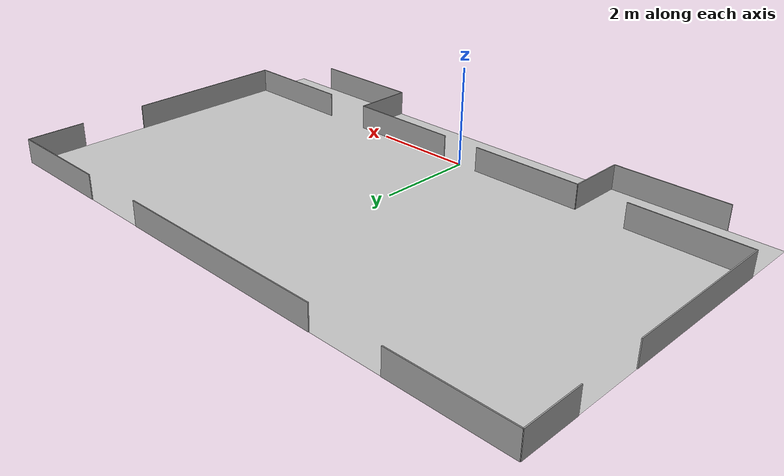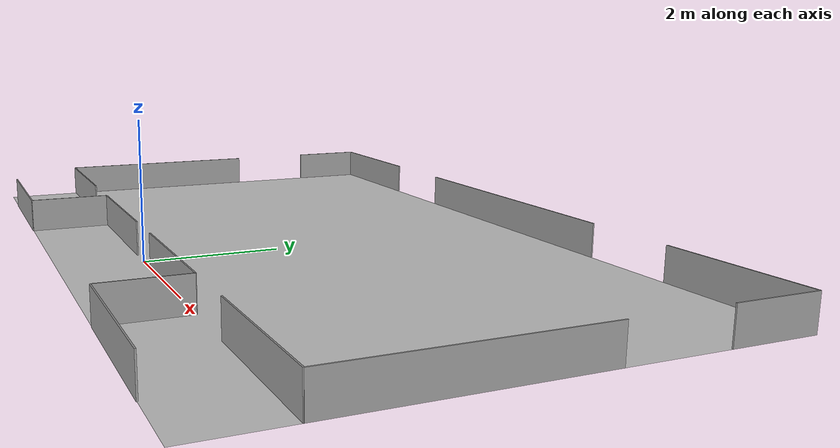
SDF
<?xml version="1.0" ?>
<sdf version="1.5">
  <model name="German Open Logistics League Field">
    <pose>0 2.5 0 0 0 0</pose>
    <static>true</static>
    <link name="field">
      <pose>0 0 0.01 0 0 0</pose>
      <collision name="collision">
        <geometry>
          <plane>
            <normal>0 0 1</normal>
            <size>12 7</size>
          </plane>
        </geometry>
        <surface>
          <friction>
            <ode>
              <mu>100</mu>
              <mu2>50</mu2>
            </ode>
          </friction>
        </surface>
      </collision>
      <visual name="carpet">
        <pose>0 -0.1 0 0 0 0</pose>
        <cast_shadows>false</cast_shadows>
        <geometry>
          <plane>
            <normal>0 0 1</normal>
            <size>12 7.2</size>
          </plane>
        </geometry>
        <material>
          <script>
            <uri>model://german_open_field/materials/scripts/</uri>
            <uri>model://german_open_field/materials/textures/</uri>
            <name>Logistics_League_Field/Image</name>
          </script>
        </material>
      </visual>
    </link>

    <link name="wall_bottom_middle_left">
      <pose>-1.55 -2.5 0.25 0 0 1.570796327</pose>
      <visual name="wall_bottom_middle_left-visual">
        <geometry>
          <box>
			<size>.02 2.3 .5</size>
          </box>
        </geometry>
        <cast_shadows>false</cast_shadows>
        <material>
	  <script>
	    <uri>file://media/materials/scripts/gazebo.material</uri>
	    <name>Gazebo/Grey</name>
	  </script>
        </material>
      </visual>
      <collision name="wall_bottom_middle_left-collision">
        <geometry>
		    <box>
			  <size>.02 2.3 .5</size>
		    </box>
        </geometry>
      </collision>
    </link>

    <link name="wall_bottom_middle_left_down">
      <pose>-2.7 -3.1 0.25 0 0 0</pose>
      <visual name="wall_bottom_middle_left_down-visual">
        <geometry>
          <box>
			<size>.02 1.2 .5</size>
          </box>
        </geometry>
        <cast_shadows>false</cast_shadows>
        <material>
	  <script>
	    <uri>file://media/materials/scripts/gazebo.material</uri>
	    <name>Gazebo/Grey</name>
	  </script>
        </material>
      </visual>
      <collision name="wall_bottom_middle_left_down-collision">
        <geometry>
		    <box>
			  <size>.02 1.2 .5</size>
		    </box>
        </geometry>
      </collision>
    </link>

    <link name="wall_bottom_middle_left_outer">
      <pose>-3.85 -3.7 0.25 0 0 1.570796327</pose>
      <visual name="wall_bottom_middle_left_outer-visual">
        <geometry>
          <box>
			<size>.02 2.3 .5</size>
          </box>
        </geometry>
        <cast_shadows>false</cast_shadows>
        <material>
	  <script>
	    <uri>file://media/materials/scripts/gazebo.material</uri>
	    <name>Gazebo/Grey</name>
	  </script>
        </material>
      </visual>
      <collision name="wall_bottom_middle_left_outer-collision">
        <geometry>
		    <box>
			  <size>.02 2.3 .5</size>
		    </box>
        </geometry>
      </collision>
    </link>

    <link name="wall_bottom_left">
      <pose>-4.85 -2.5 0.25 0 0 1.570796327</pose>
      <visual name="wall_bottom_left-visual">
        <geometry>
          <box>
			<size>.02 2.3 .5</size>
          </box>
        </geometry>
        <cast_shadows>false</cast_shadows>
        <material>
	  <script>
	    <uri>file://media/materials/scripts/gazebo.material</uri>
	    <name>Gazebo/Grey</name>
	  </script>
        </material>
      </visual>
      <collision name="wall_bottom_left-collision">
        <geometry>
		    <box>
			  <size>.02 2.3 .5</size>
		    </box>
        </geometry>
      </collision>
    </link>

    <link name="wall_bottom_middle_right">
      <pose>1.55 -2.5 0.25 0 0 1.570796327</pose>
      <visual name="wall_bottom_middle_right-visual">
        <geometry>
          <box>
			<size>.02 2.3 .5</size>
          </box>
        </geometry>
        <cast_shadows>false</cast_shadows>
        <material>
	  <script>
	    <uri>file://media/materials/scripts/gazebo.material</uri>
	    <name>Gazebo/Grey</name>
	  </script>
        </material>
      </visual>
      <collision name="wall_bottom_middle_right-collision">
        <geometry>
		    <box>
			  <size>.02 2.3 .5</size>
		    </box>
        </geometry>
      </collision>
    </link>

    <link name="wall_bottom_middle_right_down">
      <pose>2.7 -3.1 0.25 0 0 0</pose>
      <visual name="wall_bottom_middle_right_down-visual">
        <geometry>
          <box>
			<size>.02 1.2 .5</size>
          </box>
        </geometry>
        <cast_shadows>false</cast_shadows>
        <material>
	  <script>
	    <uri>file://media/materials/scripts/gazebo.material</uri>
	    <name>Gazebo/Grey</name>
	  </script>
        </material>
      </visual>
      <collision name="wall_bottom_middle_right_down-collision">
        <geometry>
		    <box>
			  <size>.02 1.2 .5</size>
		    </box>
        </geometry>
      </collision>
    </link>

    <link name="wall_bottom_middle_right_outer">
      <pose>3.85 -3.7 0.25 0 0 1.570796327</pose>
      <visual name="wall_bottom_middle_right_outer-visual">
        <geometry>
          <box>
			<size>.02 2.3 .5</size>
          </box>
        </geometry>
        <cast_shadows>false</cast_shadows>
        <material>
	  <script>
	    <uri>file://media/materials/scripts/gazebo.material</uri>
	    <name>Gazebo/Grey</name>
	  </script>
        </material>
      </visual>
      <collision name="wall_bottom_middle_right_outer-collision">
        <geometry>
		    <box>
			  <size>.02 2.3 .5</size>
		    </box>
        </geometry>
      </collision>
    </link>

    <link name="wall_bottom_right">
      <pose>4.85 -2.5 0.25 0 0 1.570796327</pose>
      <visual name="wall_bottom_right-visual">
        <geometry>
          <box>
			<size>.02 2.3 .5</size>
          </box>
        </geometry>
        <cast_shadows>false</cast_shadows>
        <material>
	  <script>
	    <uri>file://media/materials/scripts/gazebo.material</uri>
	    <name>Gazebo/Grey</name>
	  </script>
        </material>
      </visual>
      <collision name="wall_bottom_right-collision">
        <geometry>
		    <box>
			  <size>.02 2.3 .5</size>
		    </box>
        </geometry>
      </collision>
    </link>

    <link name="wall_left_bottom">
      <pose>-6 -0.8 0.25 0 0 0</pose>
      <visual name="wall_left_bottom-visual">
        <geometry>
          <box>
			<size>.02 3.4 .5</size>
          </box>
        </geometry>
        <cast_shadows>false</cast_shadows>
        <material>
	  <script>
	    <uri>file://media/materials/scripts/gazebo.material</uri>
	    <name>Gazebo/Grey</name>
	  </script>
        </material>
      </visual>
      <collision name="wall_left_bottom-collision">
        <geometry>
		    <box>
			  <size>.02 3.4 .5</size>
		    </box>
        </geometry>
      </collision>
    </link>

    <link name="wall_left_top">
      <pose>-6 2.9 0.25 0 0 0</pose>
      <visual name="wall_left_top-visual">
        <geometry>
          <box>
			<size>.02 1.2 .5</size>
          </box>
        </geometry>
        <cast_shadows>false</cast_shadows>
        <material>
	  <script>
	    <uri>file://media/materials/scripts/gazebo.material</uri>
	    <name>Gazebo/Grey</name>
	  </script>
        </material>
      </visual>
      <collision name="wall_left_top-collision">
        <geometry>
		    <box>
			  <size>.02 1.2 .5</size>
		    </box>
        </geometry>
      </collision>
    </link>

    <link name="wall_right_bottom">
      <pose>6 -0.8 0.25 0 0 0</pose>
      <visual name="wall_right_bottom-visual">
        <geometry>
          <box>
			<size>.02 3.4 .5</size>
          </box>
        </geometry>
        <cast_shadows>false</cast_shadows>
        <material>
	  <script>
	    <uri>file://media/materials/scripts/gazebo.material</uri>
	    <name>Gazebo/Grey</name>
	  </script>
        </material>
      </visual>
      <collision name="wall_right_bottom-collision">
        <geometry>
		    <box>
			  <size>.02 3.4 .5</size>
		    </box>
        </geometry>
      </collision>
    </link>

    <link name="wall_right_top">
      <pose>6 2.9 0.25 0 0 0</pose>
      <visual name="wall_right_top-visual">
        <geometry>
          <box>
			<size>.02 1.2 .5</size>
          </box>
        </geometry>
        <cast_shadows>false</cast_shadows>
        <material>
	  <script>
	    <uri>file://media/materials/scripts/gazebo.material</uri>
	    <name>Gazebo/Grey</name>
	  </script>
        </material>
      </visual>
      <collision name="wall_right_top-collision">
        <geometry>
		    <box>
			  <size>.02 1.2 .5</size>
		    </box>
        </geometry>
      </collision>
    </link>

    <link name="wall_top_middle">
      <pose>0 3.5 0.25 0 0 1.570796327</pose>
      <visual name="wall_top_middle-visual">
        <geometry>
          <box>
			<size>.02 4.5 .5</size>
          </box>
        </geometry>
        <cast_shadows>false</cast_shadows>
        <material>
	  <script>
	    <uri>file://media/materials/scripts/gazebo.material</uri>
	    <name>Gazebo/Grey</name>
	  </script>
        </material>
      </visual>
      <collision name="wall_top_middle-collision">
        <geometry>
		    <box>
			  <size>.02 4.5 .5</size>
		    </box>
        </geometry>
      </collision>
    </link>

    <link name="wall_top_left">
      <pose>-4.85 3.5 0.25 0 0 1.570796327</pose>
      <visual name="wall_top_left-visual">
        <geometry>
          <box>
			<size>.02 2.3 .5</size>
          </box>
        </geometry>
        <cast_shadows>false</cast_shadows>
        <material>
	  <script>
	    <uri>file://media/materials/scripts/gazebo.material</uri>
	    <name>Gazebo/Grey</name>
	  </script>
        </material>
      </visual>
      <collision name="wall_top_left-collision">
        <geometry>
		    <box>
			  <size>.02 2.3 .5</size>
		    </box>
        </geometry>
      </collision>
    </link>

    <link name="wall_top_right">
      <pose>4.85 3.5 0.25 0 0 1.570796327</pose>
      <visual name="wall_top_right-visual">
        <geometry>
          <box>
			<size>.02 2.3 .5</size>
          </box>
        </geometry>
        <cast_shadows>false</cast_shadows>
        <material>
	  <script>
	    <uri>file://media/materials/scripts/gazebo.material</uri>
	    <name>Gazebo/Grey</name>
	  </script>
        </material>
      </visual>
      <collision name="wall_top_right-collision">
        <geometry>
		    <box>
			  <size>.02 2.3 .5</size>
		    </box>
        </geometry>
      </collision>
    </link>

  </model>
</sdf>
